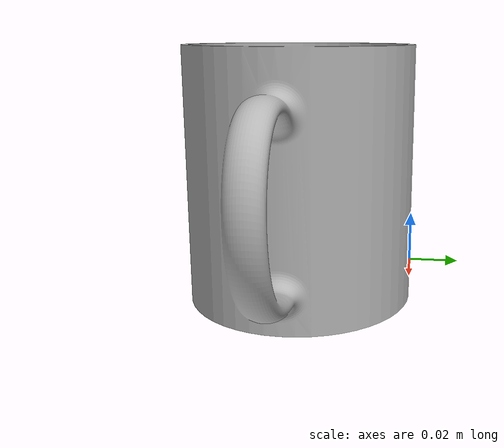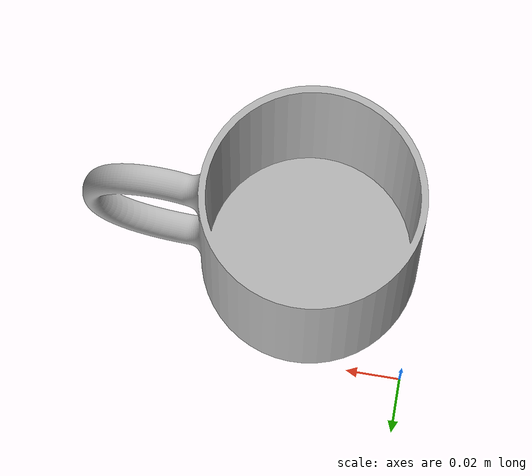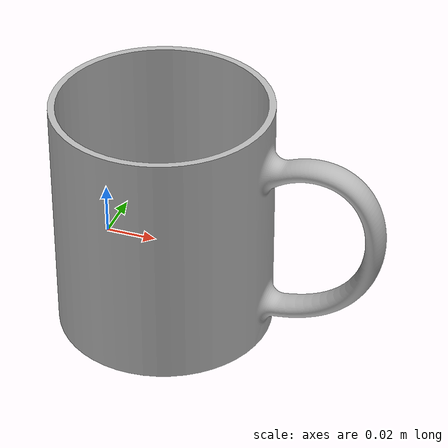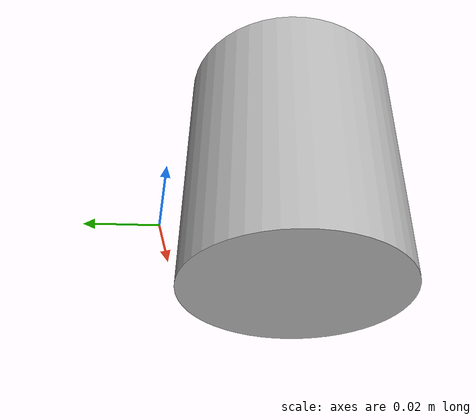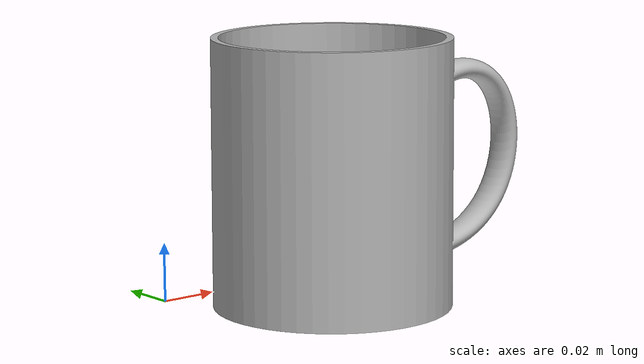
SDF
<?xml version='1.0'?>
<sdf version="1.4">
  <model name="cup">
    <pose>0 0 0  1.57 0 0</pose>
    <static>false</static>
    <link name="body">
      <inertial>
        <pose>0 0 0 0 0 0</pose>
        <mass>1.0</mass>
        <inertia>
          <ixx>1.0</ixx>
          <ixy>0.0</ixy>
          <ixz>0.0</ixz>
          <iyy>1.0</iyy>
          <iyz>0.0</iyz>
          <izz>1.0</izz>
        </inertia>
      </inertial>
      <collision name="collision">
          <geometry>
            <mesh>
              <!-- Use a downsampled mesh for collisions -->
              <uri>model://cup/meshes/model.stl</uri>
              <scale>0.001 0.001 0.001</scale>
            </mesh>
          </geometry>
          <surface>
            <friction>
              <ode>
                <mu>0.8</mu>
                <mu2>0.6</mu2>
              </ode>
            </friction>
        </surface>
      </collision>
      <visual name="visual">
        <geometry>
          <mesh>
            <uri>model://cup/meshes/model.stl</uri>
            <scale>0.001 0.001 0.001</scale>
          </mesh>
        </geometry>
        <material>
          <script>
            <uri>model://cup/cup.material</uri>
            <name>plastic</name>
          </script>
        </material>
      </visual>
    </link>
  </model>
</sdf>
